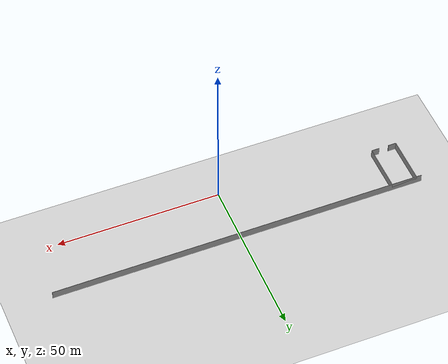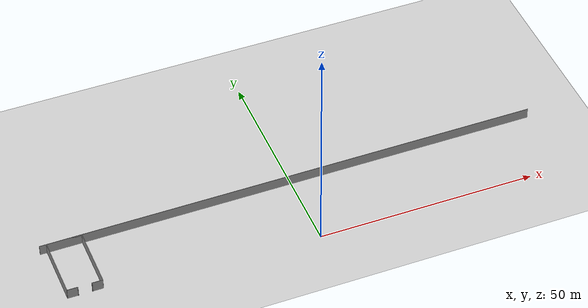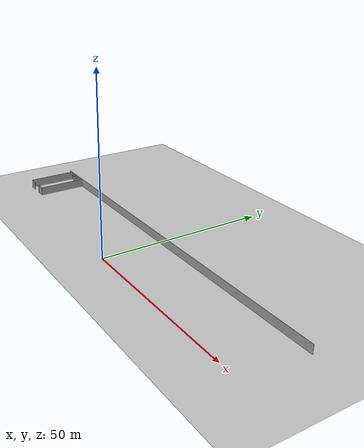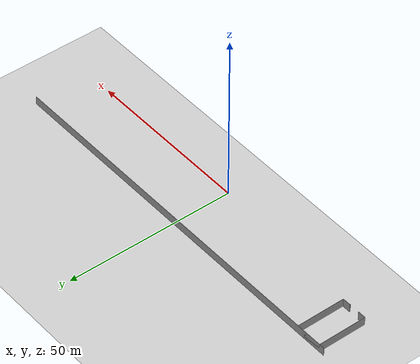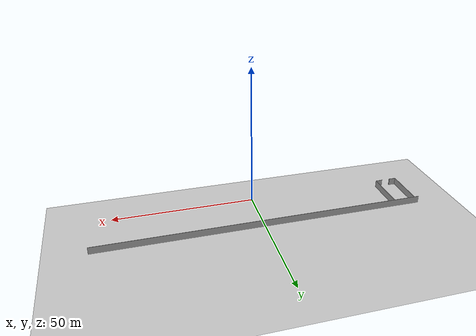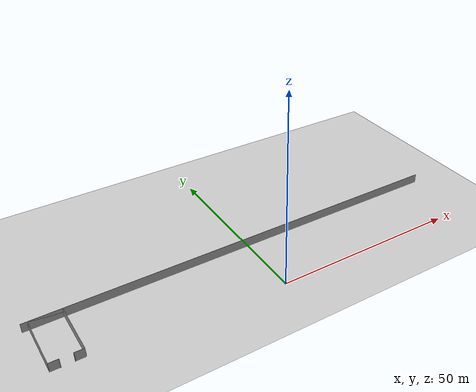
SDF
<sdf version="1.6">
 <world name="default">
  <model name="ground_plane">
   <static>1</static>
   <link name="link">
    <collision name="collision">
     <geometry><plane><normal>0 0 1</normal><size>100 100</size></plane></geometry>
     <surface><friction><ode><mu>100</mu><mu2>50</mu2></ode></friction></surface>
    </collision>
    <visual name="visual">
     <cast_shadows>0</cast_shadows>
     <geometry><plane><normal>0 0 1</normal><size>100 100</size></plane></geometry>
     <material>
      <script><uri>file://media/materials/scripts/gazebo.material</uri><name>Gazebo/Grey</name></script>
     </material>
    </visual>
   </link>
  </model>
  <model name="0510030939_A_40_1_103">
   <static>1</static>
   <link name="Wall_0">
    <collision name="Wall_0_Collision">
     <geometry><box><size>14.3257616672 0.1 2.5</size></box></geometry>
     <pose>7.16288083362 0 1.25 0 0 0</pose>
    </collision>
    <visual name="Wall_0_Visual">
     <pose>7.16288083362 0 1.25 0 0 0</pose>
     <geometry><box><size>14.3257616672 0.1 2.5</size></box></geometry>
     <material>
      <script><uri>file://media/materials/scripts/gazebo.material</uri><name>Gazebo/Grey</name></script>
      <ambient>1 1 1 1</ambient>
     </material>
    </visual>
    <pose>1.59374781587 -14.3257616672 0 0 0 1.57079632679</pose>
   </link>
   <link name="Wall_1">
    <collision name="Wall_1_Collision">
     <geometry><box><size>7.91787019093 0.1 2.5</size></box></geometry>
     <pose>3.95893509547 0 1.25 0 0 0</pose>
    </collision>
    <visual name="Wall_1_Visual">
     <pose>3.95893509547 0 1.25 0 0 0</pose>
     <geometry><box><size>7.91787019093 0.1 2.5</size></box></geometry>
     <material>
      <script><uri>file://media/materials/scripts/gazebo.material</uri><name>Gazebo/Grey</name></script>
      <ambient>1 1 1 1</ambient>
     </material>
    </visual>
    <pose>1.59374781587 -0.0 0 0 0 0.0</pose>
   </link>
   <link name="Wall_2">
    <collision name="Wall_2_Collision">
     <geometry><box><size>14.3209327445 0.1 2.5</size></box></geometry>
     <pose>7.16046637227 0 1.25 0 0 0</pose>
    </collision>
    <visual name="Wall_2_Visual">
     <pose>7.16046637227 0 1.25 0 0 0</pose>
     <geometry><box><size>14.3209327445 0.1 2.5</size></box></geometry>
     <material>
      <script><uri>file://media/materials/scripts/gazebo.material</uri><name>Gazebo/Grey</name></script>
      <ambient>1 1 1 1</ambient>
     </material>
    </visual>
    <pose>9.5116180068 -0.0 0 0 0 -1.57079632679</pose>
   </link>
   <link name="Wall_3">
    <collision name="Wall_3_Collision">
     <geometry><box><size>2.41090319916 0.1 2.5</size></box></geometry>
     <pose>1.20545159958 0 1.25 0 0 0</pose>
    </collision>
    <visual name="Wall_3_Visual">
     <pose>1.20545159958 0 1.25 0 0 0</pose>
     <geometry><box><size>2.41090319916 0.1 2.5</size></box></geometry>
     <material>
      <script><uri>file://media/materials/scripts/gazebo.material</uri><name>Gazebo/Grey</name></script>
      <ambient>1 1 1 1</ambient>
     </material>
    </visual>
    <pose>9.5116180068 -14.3209327445 0 0 0 3.14159265359</pose>
   </link>
   <link name="Wall_4">
    <collision name="Wall_4_Collision">
     <geometry><box><size>0.105346761127 0.1 2.5</size></box></geometry>
     <pose>0.0526733805636 0 1.25 0 0 0</pose>
    </collision>
    <visual name="Wall_4_Visual">
     <pose>0.0526733805636 0 1.25 0 0 0</pose>
     <geometry><box><size>0.105346761127 0.1 2.5</size></box></geometry>
     <material>
      <script><uri>file://media/materials/scripts/gazebo.material</uri><name>Gazebo/Grey</name></script>
      <ambient>1 1 1 1</ambient>
     </material>
    </visual>
    <pose>7.10071480764 -14.3209327445 0 0 0 -1.57079632679</pose>
   </link>
   <link name="Wall_5">
    <collision name="Wall_5_Collision">
     <geometry><box><size>0.075356609588 0.1 2.5</size></box></geometry>
     <pose>0.037678304794 0 1.25 0 0 0</pose>
    </collision>
    <visual name="Wall_5_Visual">
     <pose>0.037678304794 0 1.25 0 0 0</pose>
     <geometry><box><size>0.075356609588 0.1 2.5</size></box></geometry>
     <material>
      <script><uri>file://media/materials/scripts/gazebo.material</uri><name>Gazebo/Grey</name></script>
      <ambient>1 1 1 1</ambient>
     </material>
    </visual>
    <pose>7.10071480764 -14.4262795057 0 0 0 3.14159265359</pose>
   </link>
   <link name="Wall_6">
    <collision name="Wall_6_Collision">
     <geometry><box><size>0.0561679956794 0.1 2.5</size></box></geometry>
     <pose>0.0280839978397 0 1.25 0 0 0</pose>
    </collision>
    <visual name="Wall_6_Visual">
     <pose>0.0280839978397 0 1.25 0 0 0</pose>
     <geometry><box><size>0.0561679956794 0.1 2.5</size></box></geometry>
     <material>
      <script><uri>file://media/materials/scripts/gazebo.material</uri><name>Gazebo/Grey</name></script>
      <ambient>1 1 1 1</ambient>
     </material>
    </visual>
    <pose>4.03866950472 -14.4262795057 0 0 0 3.14159265359</pose>
   </link>
   <link name="Wall_7">
    <collision name="Wall_7_Collision">
     <geometry><box><size>0.0944181465832 0.1 2.5</size></box></geometry>
     <pose>0.0472090732916 0 1.25 0 0 0</pose>
    </collision>
    <visual name="Wall_7_Visual">
     <pose>0.0472090732916 0 1.25 0 0 0</pose>
     <geometry><box><size>0.0944181465832 0.1 2.5</size></box></geometry>
     <material>
      <script><uri>file://media/materials/scripts/gazebo.material</uri><name>Gazebo/Grey</name></script>
      <ambient>1 1 1 1</ambient>
     </material>
    </visual>
    <pose>3.98250150904 -14.4262795057 0 0 0 1.57079632679</pose>
   </link>
   <link name="Wall_8">
    <collision name="Wall_8_Collision">
     <geometry><box><size>2.38876148095 0.1 2.5</size></box></geometry>
     <pose>1.19438074048 0 1.25 0 0 0</pose>
    </collision>
    <visual name="Wall_8_Visual">
     <pose>1.19438074048 0 1.25 0 0 0</pose>
     <geometry><box><size>2.38876148095 0.1 2.5</size></box></geometry>
     <material>
      <script><uri>file://media/materials/scripts/gazebo.material</uri><name>Gazebo/Grey</name></script>
      <ambient>1 1 1 1</ambient>
     </material>
    </visual>
    <pose>3.98250150904 -14.3318613591 0 0 0 3.13903915525</pose>
   </link>
   <link name="Wall_308">
    <collision name="Wall_308_Collision">
     <geometry><box><size>115.320303714 0.1 2.5</size></box></geometry>
     <pose>57.6601518569 0 1.25 0 0 0</pose>
    </collision>
    <visual name="Wall_308_Visual">
     <pose>57.6601518569 0 1.25 0 0 0</pose>
     <geometry><box><size>115.320303714 0.1 2.5</size></box></geometry>
     <material>
      <script><uri>file://media/materials/scripts/gazebo.material</uri><name>Gazebo/Grey</name></script>
      <ambient>1 1 1 1</ambient>
     </material>
    </visual>
   </link>
   <pose>-57.65 17.6622597452 0 0 0 0</pose>
  </model>
 </world>
</sdf>
